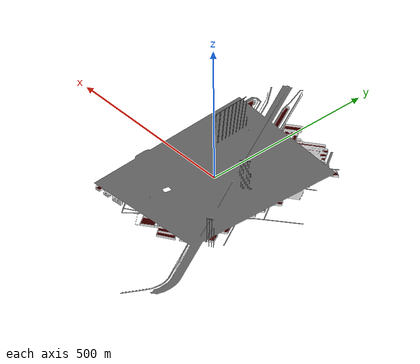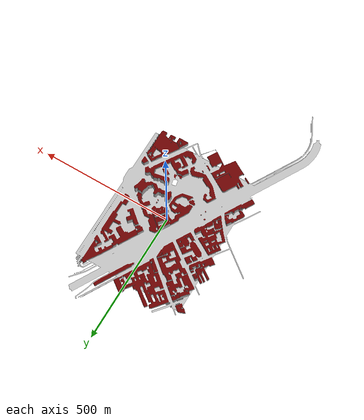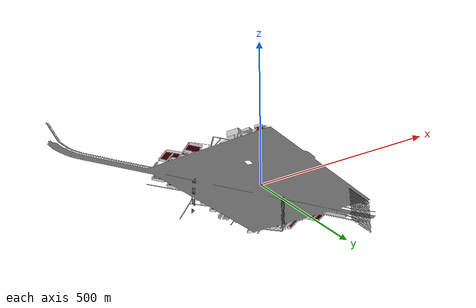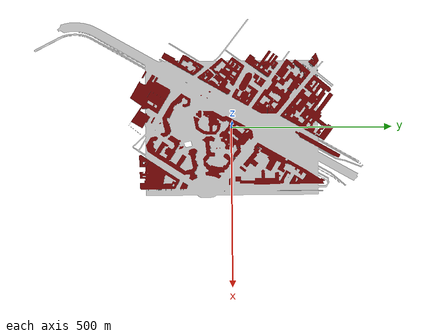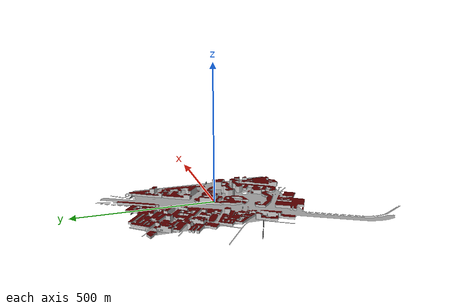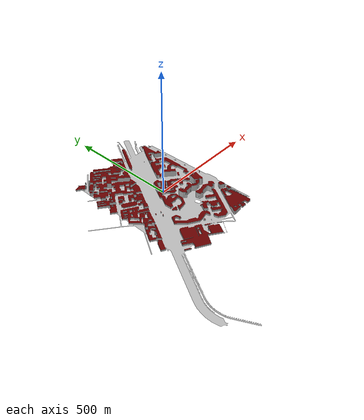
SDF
<?xml version="1.0" ?>
<sdf version="1.5">
  <model name="Quai de Jemmapes">
    <static>true</static>
    <link name="link">
      <collision name="collision">
        <geometry>
          <mesh>
            <uri>model://quai_de_jemmapes/meshes/quai_de_jemmapes.dae</uri>
          </mesh>
        </geometry>
        <surface>
          <friction>
            <ode>
              <mu>100</mu>
              <mu2>50</mu2>
            </ode>
          </friction>
        </surface>
      </collision>
      <visual name="visual">
        <geometry>
          <mesh>
            <uri>model://quai_de_jemmapes/meshes/quai_de_jemmapes.dae</uri>
          </mesh>
        </geometry>
      </visual>
    </link>
  </model>
</sdf>
